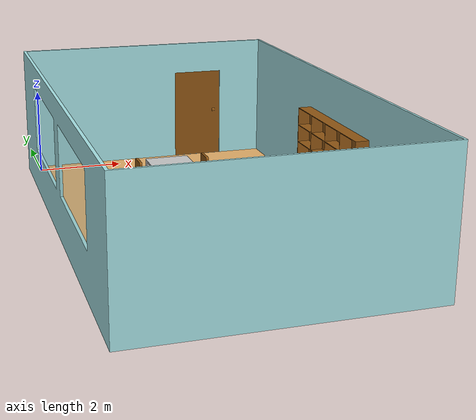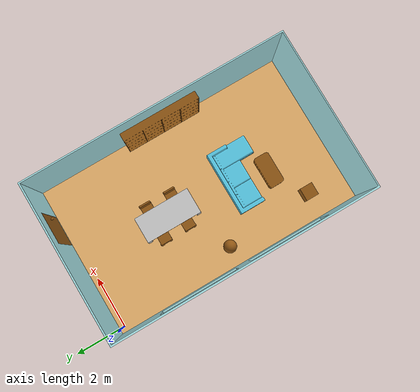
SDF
<?xml version='1.0' encoding='utf-8'?>
<sdf version="1.7">
    <world name="room">

        <scene>
            <ambient>0.4 0.4 0.4 1</ambient>
            <shadows>false</shadows>
        </scene>
        <light type="directional" name="light_one">
            <pose>0 0 50 0 0 0</pose>
            <diffuse>0.5 0.5 0.5 1</diffuse>
            <specular>1 1 1 0</specular>
            <direction>1 0 0.5</direction>
        </light>
        <light type="directional" name="light_two">
            <pose>0 0 50 0 0 0</pose>
            <diffuse>0.5 0.5 0.5 1</diffuse>
            <specular>1 1 1 0</specular>
            <direction>1 0 -0.5</direction>
        </light>

        <model name="Room">
        <static>true</static>
            <link name="floor">
                <pose>0.0 0.0 0.0 0.0 -0.0 0.0</pose>
                <inertial>
                    <mass>2100.0</mass>
                    <pose>2.8000000000000003 -4.805 0.025 0.0 0.0 0.0</pose>
                    <inertia>
                        <ixx>17500.437500000015</ixx>
                        <iyy>6300.437499999996</iyy>
                        <izz>23800.000000000015</izz>
                        <ixy>0.0</ixy>
                        <iyz>2.842170943040401e-14</iyz>
                        <ixz>0.0</ixz>
                    </inertia>
                </inertial>
                <visual name="floor_visual">
                    <geometry>
                        <mesh>
                            <uri>meshes/world_floor.stl</uri>
                            <scale>0.001 0.001 0.001</scale>
                        </mesh>
                    </geometry>
                    <material>
                        <ambient>0.678 0.490 0.243 1</ambient>
                        <diffuse>0.901 0.690 0.416 1</diffuse>
                        <specular>0.2 0.2 0.2 1</specular>
                        <emissive>0 0 0 1</emissive>
                    </material>
                </visual>
                <collision name="floor_collision">
                    <geometry>
                        <mesh>
                            <uri>meshes/world_floor.stl</uri>
                            <scale>0.001 0.001 0.001</scale>
                        </mesh>
                    </geometry>
                </collision>
            </link>
            <link name="walls">
                <pose>0.0 0.0 0.0 0.0 -0.0 0.0</pose>
                <inertial>
                    <mass>3117.891225</mass>
                    <pose>2.836662471062473 -4.677193059850092 1.48039856890774 0.0 0.0 0.0</pose>
                    <inertia>
                        <ixx>50414.834671058765</ixx>
                        <iyy>24072.333117455928</iyy>
                        <izz>69371.22807103347</izz>
                        <ixy>742.5314620847785</ixy>
                        <iyz>-195.23980573716472</iyz>
                        <ixz>-351.08824681010265</ixz>
                    </inertia>
                </inertial>
                <visual name="walls_visual">
                    <geometry>
                        <mesh>
                            <uri>meshes/world_walls.stl</uri>
                            <scale>0.001 0.001 0.001</scale>
                        </mesh>
                    </geometry>
                    <material>
                        <ambient>0.541 0.729 0.741 1</ambient>
                        <diffuse>0.662 0.898 0.910 1</diffuse>
                        <specular>0 0 0 1</specular>
                        <emissive>0 0 0 1</emissive>
                    </material>
                </visual>
                <collision name="walls_collision">
                    <geometry>
                        <mesh>
                            <uri>meshes/world_walls.stl</uri>
                            <scale>0.001 0.001 0.001</scale>
                        </mesh>
                    </geometry>
                </collision>
            </link>
            <link name="window_two">
                <pose>0.0 0.0 0.0 0.0 -0.0 0.0</pose>
                <inertial>
                    <mass>707.8499999999999</mass>
                    <pose>-0.2325 -3.0525 1.75 0.0 0.0 0.0</pose>
                    <inertia>
                        <ixx>663.609375</ixx>
                        <iyy>132.97109718750016</iyy>
                        <izz>531.1367221874989</izz>
                        <ixy>0.0</ixy>
                        <iyz>4.547473508864641e-13</iyz>
                        <ixz>0.0</ixz>
                    </inertia>
                </inertial>
                <visual name="window_two_visual">
                    <geometry>
                        <mesh>
                            <uri>meshes/world_window_two.stl</uri>
                            <scale>0.001 0.001 0.001</scale>
                        </mesh>
                    </geometry>
                    <material>
                        <ambient>0.541 0.729 0.741 0.1</ambient>
                        <diffuse>0.662 0.898 0.910 0.1</diffuse>
                        <specular>0 0 0 0.1</specular>
                        <emissive>0 0 0 0.1</emissive>
                    </material>
                </visual>
                <collision name="window_two_collision">
                    <geometry>
                        <mesh>
                            <uri>meshes/world_window_two.stl</uri>
                            <scale>0.001 0.001 0.001</scale>
                        </mesh>
                    </geometry>
                </collision>
            </link>
            <link name="window_one">
                <pose>0.0 0.0 0.0 0.0 -0.0 0.0</pose>
                <inertial>
                    <mass>707.8499999999999</mass>
                    <pose>-0.2325 -6.5525 1.75 0.0 0.0 0.0</pose>
                    <inertia>
                        <ixx>663.609375</ixx>
                        <iyy>132.97109718750016</iyy>
                        <izz>531.1367221874971</izz>
                        <ixy>0.0</ixy>
                        <iyz>1.8189894035458565e-12</iyz>
                        <ixz>0.0</ixz>
                    </inertia>
                </inertial>
                <visual name="window_one_visual">
                    <geometry>
                        <mesh>
                            <uri>meshes/world_window_one.stl</uri>
                            <scale>0.001 0.001 0.001</scale>
                        </mesh>
                    </geometry>
                    <material>
                        <ambient>0.541 0.729 0.741 0.1</ambient>
                        <diffuse>0.662 0.898 0.910 0.1</diffuse>
                        <specular>0 0 0 0.1</specular>
                        <emissive>0 0 0 0.1</emissive>
                    </material>
                </visual>
                <collision name="window_one_collision">
                    <geometry>
                        <mesh>
                            <uri>meshes/world_window_one.stl</uri>
                            <scale>0.001 0.001 0.001</scale>
                        </mesh>
                    </geometry>
                </collision>
            </link>
            <link name="chair_one">
                <pose>1.25 -3.5 1.0 0.0 -0.0 0.0</pose>
                <inertial>
                    <mass>27.20554971621723</mass>
                    <pose>0.7255960196471805 0.6069953628473342 -0.5102003979306072 0.0 0.0 0.0</pose>
                    <inertia>
                        <ixx>1.964145757762168</ixx>
                        <iyy>2.332885619681889</iyy>
                        <izz>1.4065995779355376</izz>
                        <ixy>0.0</ixy>
                        <iyz>0.0</iyz>
                        <ixz>0.5375811180004568</ixz>
                    </inertia>
                </inertial>
                <visual name="chair_one_visual">
                    <geometry>
                        <mesh>
                            <uri>meshes/world_chair.stl</uri>
                            <scale>0.001 0.001 0.001</scale>
                        </mesh>
                    </geometry>
                    <material>
                        <ambient>0.400 0.239 0.051 1</ambient>
                        <diffuse>0.569 0.341 0.078 1</diffuse>
                        <specular>0.4 0.4 0.4 1</specular>
                        <emissive>0 0 0 1</emissive>
                    </material>
                </visual>
                <collision name="chair_one_collision">
                    <geometry>
                        <mesh>
                            <uri>meshes/world_chair.stl</uri>
                            <scale>0.001 0.001 0.001</scale>
                        </mesh>
                    </geometry>
                </collision>
            </link>
            <link name="coffee_table">
                <pose>0.0 0.0 0.0 0.0 -0.0 0.0</pose>
                <inertial>
                    <mass>31.71953221068807</mass>
                    <pose>2.239981384277429 -7.469981384277347 0.2959989866576574 0.0 0.0 0.0</pose>
                    <inertia>
                        <ixx>1.515551525729279</ixx>
                        <iyy>5.333935636132793</iyy>
                        <izz>5.801738403159561</izz>
                        <ixy>4.547473508864641e-13</ixy>
                        <iyz>-1.4210854715202004e-14</iyz>
                        <ixz>4.902744876744691e-13</ixz>
                    </inertia>
                </inertial>
                <visual name="coffee_table_visual">
                    <geometry>
                        <mesh>
                            <uri>meshes/world_coffee_table.stl</uri>
                            <scale>0.001 0.001 0.001</scale>
                        </mesh>
                    </geometry>
                    <material>
                        <ambient>0.400 0.239 0.051 1</ambient>
                        <diffuse>0.569 0.341 0.078 1</diffuse>
                        <specular>0.4 0.4 0.4 1</specular>
                        <emissive>0 0 0 1</emissive>
                    </material>
                </visual>
                <collision name="coffee_table_collision">
                    <geometry>
                        <mesh>
                            <uri>meshes/world_coffee_table.stl</uri>
                            <scale>0.001 0.001 0.001</scale>
                        </mesh>
                    </geometry>
                </collision>
            </link>
            <link name="sofa">
                <pose>0.0 0.0 0.0 0.0 -0.0 0.0</pose>
                <inertial>
                    <mass>145.51396319305684</mass>
                    <pose>2.7020216564408686 -6.307656743478596 0.2859317610733626 0.0 0.0 0.0</pose>
                    <inertia>
                        <ixx>25.18212674256756</ixx>
                        <iyy>86.88923793659797</iyy>
                        <izz>108.05590206765464</izz>
                        <ixy>11.511084303396729</ixy>
                        <iyz>-1.9307371668044766</iyz>
                        <ixz>0.8804010379720637</ixz>
                    </inertia>
                </inertial>
                <visual name="sofa_visual">
                    <geometry>
                        <mesh>
                            <uri>meshes/world_sofa.stl</uri>
                            <scale>0.001 0.001 0.001</scale>
                        </mesh>
                    </geometry>
                    <material>
                        <ambient>0.184 0.643 0.761 1</ambient>
                        <diffuse>0.345 0.796 0.910 1</diffuse>
                        <specular>0.1 0.1 0.1 1</specular>
                        <emissive>0 0 0 1</emissive>
                    </material>
                </visual>
                <collision name="sofa_collision">
                    <geometry>
                        <mesh>
                            <uri>meshes/world_sofa.stl</uri>
                            <scale>0.001 0.001 0.001</scale>
                        </mesh>
                    </geometry>
                </collision>
            </link>
            <link name="table">
                <pose>3.75 -4.305 0.04999999999999972 1.1102230246251563e-16 -2.7755575615628914e-17 -5.551115123125783e-17</pose>
                <inertial>
                    <mass>55.80800000000011</mass>
                    <pose>-1.1000000000000016 0.8999999999999962 0.6487155963302755 0.0 0.0 0.0</pose>
                    <inertia>
                        <ixx>31.122476467278375</ixx>
                        <iyy>7.816236467278486</iyy>
                        <izz>35.67189333333387</izz>
                        <ixy>1.6836872379996332e-13</ixy>
                        <iyz>-8.043697599095931e-14</iyz>
                        <ixz>-4.250629246177317e-14</ixz>
                    </inertia>
                </inertial>
                <visual name="table_visual">
                    <geometry>
                        <mesh>
                            <uri>meshes/world_table.stl</uri>
                            <scale>0.001 0.001 0.001</scale>
                        </mesh>
                    </geometry>
                    <material>
                        <ambient>0.549 0.549 0.549 1</ambient>
                        <diffuse>0.788 0.788 0.788 1</diffuse>
                        <specular>0.8 0.8 0.8 1</specular>
                        <emissive>0 0 0 1</emissive>
                    </material>
                </visual>
                <collision name="table_collision">
                    <geometry>
                        <mesh>
                            <uri>meshes/world_table.stl</uri>
                            <scale>0.001 0.001 0.001</scale>
                        </mesh>
                    </geometry>
                </collision>
            </link>
            <link name="chair_two">
                <pose>1.25 -4.5 1.0 0.0 -0.0 0.0</pose>
                <inertial>
                    <mass>27.205549716217106</mass>
                    <pose>0.7255960196471827 0.6069953628473337 -0.5102003979306063 0.0 0.0 0.0</pose>
                    <inertia>
                        <ixx>1.9641457577621395</ixx>
                        <iyy>2.3328856196819174</iyy>
                        <izz>1.4065995779355944</izz>
                        <ixy>2.842170943040401e-14</ixy>
                        <iyz>0.0</iyz>
                        <ixz>0.5375811180004604</ixz>
                    </inertia>
                </inertial>
                <visual name="chair_two_visual">
                    <geometry>
                        <mesh>
                            <uri>meshes/world_chair.stl</uri>
                            <scale>0.001 0.001 0.001</scale>
                        </mesh>
                    </geometry>
                    <material>
                        <ambient>0.400 0.239 0.051 1</ambient>
                        <diffuse>0.569 0.341 0.078 1</diffuse>
                        <specular>0.4 0.4 0.4 1</specular>
                        <emissive>0 0 0 1</emissive>
                    </material>
                </visual>
                <collision name="chair_two_collision">
                    <geometry>
                        <mesh>
                            <uri>meshes/world_chair.stl</uri>
                            <scale>0.001 0.001 0.001</scale>
                        </mesh>
                    </geometry>
                </collision>
            </link>
            <link name="chair_three">
                <pose>4.010226922721813 -3.286009274305133 1.0 0.0 -0.0 -3.1415926535895293</pose>
                <inertial>
                    <mass>27.205549716217106</mass>
                    <pose>0.7255960196471823 0.6069953628473336 -0.5102003979306063 0.0 0.0 0.0</pose>
                    <inertia>
                        <ixx>1.964145757762196</ixx>
                        <iyy>2.3328856196819165</iyy>
                        <izz>1.4065995779357081</izz>
                        <ixy>4.05489121732013e-14</ixy>
                        <iyz>-6.983911196369033e-15</iyz>
                        <ixz>0.5375811180004674</ixz>
                    </inertia>
                </inertial>
                <visual name="chair_three_visual">
                    <geometry>
                        <mesh>
                            <uri>meshes/world_chair.stl</uri>
                            <scale>0.001 0.001 0.001</scale>
                        </mesh>
                    </geometry>
                    <material>
                        <ambient>0.400 0.239 0.051 1</ambient>
                        <diffuse>0.569 0.341 0.078 1</diffuse>
                        <specular>0.4 0.4 0.4 1</specular>
                        <emissive>0 0 0 1</emissive>
                    </material>
                </visual>
                <collision name="chair_three_collision">
                    <geometry>
                        <mesh>
                            <uri>meshes/world_chair.stl</uri>
                            <scale>0.001 0.001 0.001</scale>
                        </mesh>
                    </geometry>
                </collision>
            </link>
            <link name="chair_four">
                <pose>4.010226922721549 -2.286009274305132 1.0 -1.2239669982569777e-29 -3.33066907387547e-16 -3.1415926535895293</pose>
                <inertial>
                    <mass>27.205549716217106</mass>
                    <pose>0.7255960196471819 0.6069953628473336 -0.510200397930606 0.0 0.0 0.0</pose>
                    <inertia>
                        <ixx>1.9641457577621666</ixx>
                        <iyy>2.3328856196819165</iyy>
                        <izz>1.4065995779357068</izz>
                        <ixy>-1.629450668759905e-14</ixy>
                        <iyz>-6.983911196369073e-15</iyz>
                        <ixz>0.5375811180004668</ixz>
                    </inertia>
                </inertial>
                <visual name="chair_four_visual">
                    <geometry>
                        <mesh>
                            <uri>meshes/world_chair.stl</uri>
                            <scale>0.001 0.001 0.001</scale>
                        </mesh>
                    </geometry>
                    <material>
                        <ambient>0.400 0.239 0.051 1</ambient>
                        <diffuse>0.569 0.341 0.078 1</diffuse>
                        <specular>0.4 0.4 0.4 1</specular>
                        <emissive>0 0 0 1</emissive>
                    </material>
                </visual>
                <collision name="chair_four_collision">
                    <geometry>
                        <mesh>
                            <uri>meshes/world_chair.stl</uri>
                            <scale>0.001 0.001 0.001</scale>
                        </mesh>
                    </geometry>

                </collision>
            </link>
            <link name="door">
                <pose>0.0 0.0 0.0 0.0 -0.0 0.0</pose>
                <inertial>
                    <mass>80.90622930238219</mass>
                    <pose>4.153415651129651 0.23000000000000004 1.1506027619640562 0.0 0.0 0.0</pose>
                    <inertia>
                        <ixx>32.39450110252231</ixx>
                        <iyy>42.121416600180055</iyy>
                        <izz>9.768176718958557</izz>
                        <ixy>2.842170943040401e-14</ixy>
                        <iyz>0.0</iyz>
                        <ixz>-0.020559487279513178</ixz>
                    </inertia>
                </inertial>
                <visual name="door_visual">
                    <geometry>
                        <mesh>
                            <uri>meshes/world_door.stl</uri>
                            <scale>0.001 0.001 0.001</scale>
                        </mesh>
                    </geometry>
                    <material>
                        <ambient>0.400 0.239 0.051 1</ambient>
                        <diffuse>0.569 0.341 0.078 1</diffuse>
                        <specular>0.4 0.4 0.4 1</specular>
                        <emissive>0 0 0 1</emissive>
                    </material>
                </visual>
                <collision name="door_collision">
                    <geometry>
                        <mesh>
                            <uri>meshes/world_door.stl</uri>
                            <scale>0.001 0.001 0.001</scale>
                        </mesh>
                    </geometry>
                </collision>
            </link>
            <link name="bookshelf">
                <pose>5.6484587045685934 -4.899999999999997 1.05 0.0 -0.0 -3.1415926535889964</pose>
                <inertial>
                    <mass>2069.603437499998</mass>
                    <pose>-0.07284243652656311 -5.215058732387876e-16 -5.684341886080802e-16 0.0 0.0 0.0</pose>
                    <inertia>
                        <ixx>2426.390938839256</ixx>
                        <iyy>778.791054508258</iyy>
                        <izz>1681.807045288122</izz>
                        <ixy>4.4492109945228865e-12</ixy>
                        <iyz>3.6379788070902686e-12</iyz>
                        <ixz>1.818989403548757e-12</ixz>
                    </inertia>
                </inertial>
                <visual name="bookshelf_visual">
                    <geometry>
                        <mesh>
                            <uri>meshes/world_bookshelf.stl</uri>
                            <scale>0.001 0.001 0.001</scale>
                        </mesh>
                    </geometry>
                    <material>
                        <ambient>0.400 0.239 0.051 1</ambient>
                        <diffuse>0.569 0.341 0.078 1</diffuse>
                        <specular>0.4 0.4 0.4 1</specular>
                        <emissive>0 0 0 1</emissive>
                    </material>
                </visual>
                <collision name="bookshelf_collision">
                    <geometry>
                        <mesh>
                            <uri>meshes/world_bookshelf.stl</uri>
                            <scale>0.001 0.001 0.001</scale>
                        </mesh>
                    </geometry>
                </collision>
            </link>
            <link name="sphere">
                <pose>0.0 0.0 0.0 0.0 -0.0 0.0</pose>
                <inertial>
                    <mass>513.7812985558306</mass>
                    <pose>0.55 -4.805000000000001 0.3 0.0 0.0 0.0</pose>
                    <inertia>
                        <ixx>12.844532463894211</ixx>
                        <iyy>12.844532463895774</iyy>
                        <izz>12.844532463894211</izz>
                        <ixy>-2.2737367544323206e-13</ixy>
                        <iyz>0.0</iyz>
                        <ixz>0.0</ixz>
                    </inertia>
                </inertial>
                <visual name="sphere_visual">
                    <geometry>
                        <mesh>
                            <uri>meshes/world_sphere.stl</uri>
                            <scale>0.001 0.001 0.001</scale>
                        </mesh>
                    </geometry>
                    <material>
                        <ambient>0.400 0.239 0.051 1</ambient>
                        <diffuse>0.569 0.341 0.078 1</diffuse>
                        <specular>0.4 0.4 0.4 1</specular>
                        <emissive>0 0 0 1</emissive>
                    </material>
                </visual>
                <collision name="sphere_collision">
                    <geometry>
                        <mesh>
                            <uri>meshes/world_sphere.stl</uri>
                            <scale>0.001 0.001 0.001</scale>
                        </mesh>
                    </geometry>
                </collision>
            </link>
            <link name="box">
                <pose>0.0 0.0 0.0 0.0 -0.0 0.0</pose>
                <inertial>
                    <mass>981.2499999999999</mass>
                    <pose>0.8 -8.305 0.3 0.0 0.0 0.0</pose>
                    <inertia>
                        <ixx>40.88541666670062</ixx>
                        <iyy>40.885416666666515</iyy>
                        <izz>40.88541666670062</izz>
                        <ixy>0.0</ixy>
                        <iyz>0.0</iyz>
                        <ixz>-2.842170943040401e-14</ixz>
                    </inertia>
                </inertial>
                <visual name="box_visual">
                    <geometry>
                        <mesh>
                            <uri>meshes/world_box.stl</uri>
                            <scale>0.001 0.001 0.001</scale>
                        </mesh>
                    </geometry>
                    <material>
                        <ambient>0.400 0.239 0.051 1</ambient>
                        <diffuse>0.569 0.341 0.078 1</diffuse>
                        <specular>0.4 0.4 0.4 1</specular>
                        <emissive>0 0 0 1</emissive>
                    </material>
                </visual>
                <collision name="box_collision">
                    <geometry>
                        <mesh>
                            <uri>meshes/world_box.stl</uri>
                            <scale>0.001 0.001 0.001</scale>
                        </mesh>
                    </geometry>
                </collision>
            </link>
        </model>
    </world>
</sdf>
